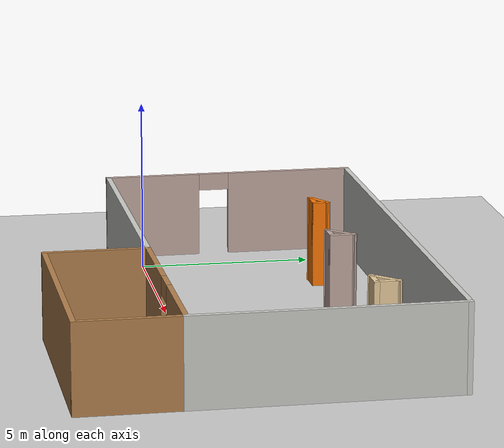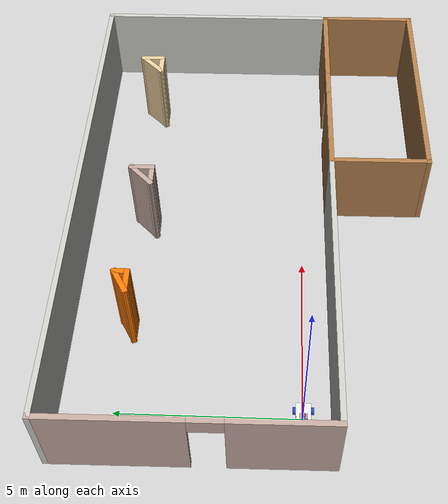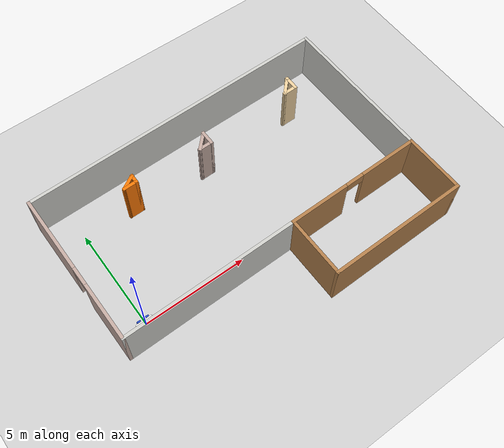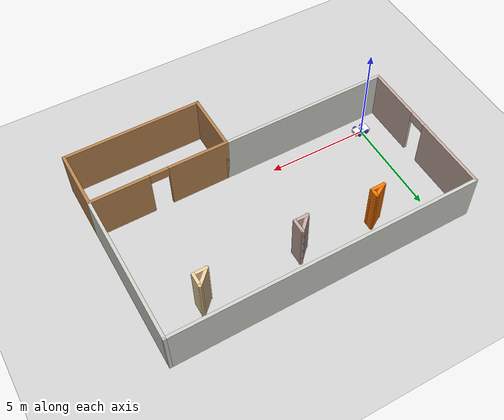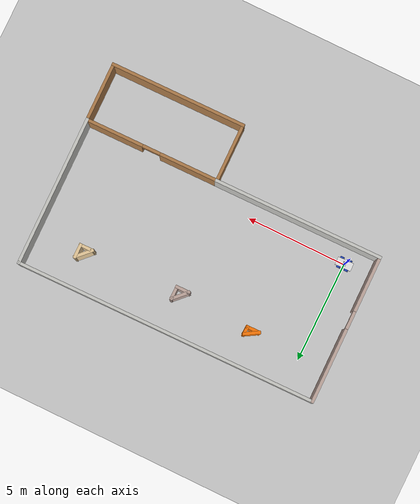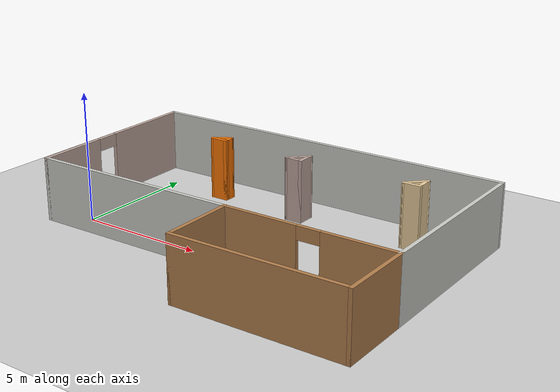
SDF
<sdf version="1.7">
 <world name="default">
  <light name="sun" type="directional">
   <pose>0 0 10 0 -0 0</pose>
   <diffuse>0.8 0.8 0.8 1</diffuse>
   <specular>0.2 0.2 0.2 1</specular>
   <attenuation>
    <range>1000</range>
    <constant>0.9</constant>
    <linear>0.01</linear>
    <quadratic>0.001</quadratic>
   </attenuation>
   <direction>-0.5 0.1 -0.9</direction>
   <spot><inner_angle>0</inner_angle><outer_angle>0</outer_angle><falloff>0</falloff></spot>
  </light>
  <model name="ground_plane">
   <static>1</static>
   <link name="link">
    <collision name="collision">
     <geometry><plane><normal>0 0 1</normal><size>100 100</size></plane></geometry>
     <surface><friction><ode><mu>100</mu><mu2>50</mu2></ode></friction></surface>
    </collision>
    <visual name="visual">
     <cast_shadows>0</cast_shadows>
     <geometry><plane><normal>0 0 1</normal><size>100 100</size></plane></geometry>
     <material>
      <script><uri>file://media/materials/scripts/gazebo.material</uri><name>Gazebo/Grey</name></script>
     </material>
    </visual>
   </link>
  </model>
  <gravity>0 0 -9.8</gravity>
  <magnetic_field>6e-06 2.3e-05 -4.2e-05</magnetic_field>
  <atmosphere type="adiabatic"/>
  <physics type="ode">
   <max_step_size>0.001</max_step_size>
   <real_time_factor>1</real_time_factor>
   <real_time_update_rate>1000</real_time_update_rate>
  </physics>
  <scene><ambient>0.4 0.4 0.4 1</ambient><background>0.7 0.7 0.7 1</background><shadows>1</shadows></scene>
  <audio><device>default</device></audio>
  <spherical_coordinates>
   <surface_model>EARTH_WGS84</surface_model>
   <latitude_deg>0</latitude_deg>
   <longitude_deg>0</longitude_deg>
   <elevation>0</elevation>
   <heading_deg>0</heading_deg>
  </spherical_coordinates>
  <model name="butler">
   <link name="base_link">
    <inertial>
     <pose>0 0 0.03625 0 -0 0</pose>
     <mass>0.8</mass>
     <inertia>
      <ixx>0.0105471</ixx>
      <ixy>0</ixy>
      <ixz>0</ixz>
      <iyy>0.0300471</iyy>
      <iyz>0</iyz>
      <izz>0.0342917</izz>
     </inertia>
    </inertial>
    <collision name="base_link_fixed_joint_lump__chassis_collision">
     <geometry><box><size>0.8 0.4 0.15</size></box></geometry>
    </collision>
    <collision name="base_link_fixed_joint_lump__laser_frame_collision_1">
     <pose>0 0 0.14 0 -0 0</pose>
     <geometry><cylinder><length>0.04</length><radius>0.05</radius></cylinder></geometry>
    </collision>
    <collision name="base_link_fixed_joint_lump__smaller_box_collision_2">
     <pose>0 0 0.075 0 -0 0</pose>
     <geometry><box><size>0.1 0.2 0.1</size></box></geometry>
    </collision>
    <visual name="base_link_fixed_joint_lump__chassis_visual">
     <geometry><box><size>0.8 0.4 0.15</size></box></geometry>
     <material>
      <script><name>Gazebo/White</name><uri>file://media/materials/scripts/gazebo.material</uri></script>
     </material>
    </visual>
    <visual name="base_link_fixed_joint_lump__camera_link_visual_1">
     <pose>0.4 0 0.08 0 -0 0</pose>
     <geometry><box><size>0.01 0.03 0.03</size></box></geometry>
     <material>
      <script><name>Gazebo/Red</name><uri>file://media/materials/scripts/gazebo.material</uri></script>
     </material>
    </visual>
    <visual name="base_link_fixed_joint_lump__laser_frame_visual_2">
     <pose>0 0 0.14 0 -0 0</pose>
     <geometry><cylinder><length>0.04</length><radius>0.05</radius></cylinder></geometry>
     <material>
      <script><name>Gazebo/Red</name><uri>file://media/materials/scripts/gazebo.material</uri></script>
     </material>
    </visual>
    <visual name="base_link_fixed_joint_lump__smaller_box_visual_3">
     <pose>0 0 0.075 0 -0 0</pose>
     <geometry><box><size>0.15 0.2 0.1</size></box></geometry>
     <material>
      <script><name>Gazebo/Gray</name><uri>file://media/materials/scripts/gazebo.material</uri></script>
     </material>
    </visual>
    <sensor name="camera" type="camera">
     <visualize>1</visualize>
     <update_rate>10</update_rate>
     <camera>
      <horizontal_fov>1.089</horizontal_fov>
      <image><format>R8G8B8</format><width>640</width><height>480</height></image>
      <clip><near>0.05</near><far>8</far></clip>
     </camera>
     <plugin name="camera_controller" filename="libgazebo_ros_camera.so">
      <frame_name>camera_link_optical</frame_name>
     </plugin>
     <pose>0.4 0 0.08 0 -0 0</pose>
    </sensor>
    <sensor name="laser" type="ray">
     <visualize>1</visualize>
     <update_rate>10</update_rate>
     <ray>
      <scan>
       <horizontal>
        <samples>360</samples>
        <min_angle>-3.14</min_angle>
        <max_angle>3.14</max_angle>
        <resolution>1</resolution>
       </horizontal>
       <vertical><samples>1</samples><min_angle>0</min_angle><max_angle>0</max_angle></vertical>
      </scan>
      <range><min>0.3</min><max>12</max></range>
     </ray>
     <plugin name="laser_controller" filename="libgazebo_ros_ray_sensor.so">
      <ros><argument>~/out:=scan</argument></ros>
      <output_type>sensor_msgs/LaserScan</output_type>
      <frame_name>laser_frame</frame_name>
     </plugin>
     <pose>0 0 0.14 0 -0 0</pose>
    </sensor>
   </link>
   <joint name="front_left_wheel_joint" type="revolute">
    <pose relative_to="base_link">0.2 0.24 0 -1.5714 0 0</pose>
    <parent>base_link</parent>
    <child>front_left_wheel</child>
    <axis>
     <xyz>0 0 1</xyz>
     <limit><lower>-1e+16</lower><upper>1e+16</upper></limit>
     <dynamics><spring_reference>0</spring_reference><spring_stiffness>0</spring_stiffness></dynamics>
    </axis>
   </joint>
   <link name="front_left_wheel">
    <pose relative_to="front_left_wheel_joint">0 0 0 0 -0 0</pose>
    <inertial>
     <mass>0.1</mass>
     <inertia>
      <ixx>0.000303333</ixx>
      <ixy>0</ixy>
      <ixz>0</ixz>
      <iyy>0.000303333</iyy>
      <iyz>0</iyz>
      <izz>0.0005</izz>
     </inertia>
    </inertial>
    <collision name="front_left_wheel_collision">
     <geometry><cylinder><length>0.08</length><radius>0.1</radius></cylinder></geometry>
    </collision>
    <visual name="front_left_wheel_visual">
     <geometry><cylinder><length>0.08</length><radius>0.1</radius></cylinder></geometry>
     <material>
      <script><name>Gazebo/Blue</name><uri>file://media/materials/scripts/gazebo.material</uri></script>
     </material>
    </visual>
   </link>
   <joint name="front_right_wheel_joint" type="revolute">
    <pose relative_to="base_link">0.2 -0.24 0 1.5714 -0 0</pose>
    <parent>base_link</parent>
    <child>front_right_wheel</child>
    <axis>
     <xyz>0 0 -1</xyz>
     <limit><lower>-1e+16</lower><upper>1e+16</upper></limit>
     <dynamics><spring_reference>0</spring_reference><spring_stiffness>0</spring_stiffness></dynamics>
    </axis>
   </joint>
   <link name="front_right_wheel">
    <pose relative_to="front_right_wheel_joint">0 0 0 0 -0 0</pose>
    <inertial>
     <mass>0.1</mass>
     <inertia>
      <ixx>0.000303333</ixx>
      <ixy>0</ixy>
      <ixz>0</ixz>
      <iyy>0.000303333</iyy>
      <iyz>0</iyz>
      <izz>0.0005</izz>
     </inertia>
    </inertial>
    <collision name="front_right_wheel_collision">
     <geometry><cylinder><length>0.08</length><radius>0.1</radius></cylinder></geometry>
    </collision>
    <visual name="front_right_wheel_visual">
     <geometry><cylinder><length>0.08</length><radius>0.1</radius></cylinder></geometry>
     <material>
      <script><name>Gazebo/Blue</name><uri>file://media/materials/scripts/gazebo.material</uri></script>
     </material>
    </visual>
   </link>
   <joint name="rear_left_wheel_joint" type="revolute">
    <pose relative_to="base_link">-0.2 0.24 0 -1.5714 0 0</pose>
    <parent>base_link</parent>
    <child>rear_left_wheel</child>
    <axis>
     <xyz>0 0 1</xyz>
     <limit><lower>-1e+16</lower><upper>1e+16</upper></limit>
     <dynamics><spring_reference>0</spring_reference><spring_stiffness>0</spring_stiffness></dynamics>
    </axis>
   </joint>
   <link name="rear_left_wheel">
    <pose relative_to="rear_left_wheel_joint">0 0 0 0 -0 0</pose>
    <inertial>
     <mass>0.1</mass>
     <inertia>
      <ixx>0.000303333</ixx>
      <ixy>0</ixy>
      <ixz>0</ixz>
      <iyy>0.000303333</iyy>
      <iyz>0</iyz>
      <izz>0.0005</izz>
     </inertia>
    </inertial>
    <collision name="rear_left_wheel_collision">
     <geometry><cylinder><length>0.08</length><radius>0.1</radius></cylinder></geometry>
    </collision>
    <visual name="rear_left_wheel_visual">
     <geometry><cylinder><length>0.08</length><radius>0.1</radius></cylinder></geometry>
     <material>
      <script><name>Gazebo/Blue</name><uri>file://media/materials/scripts/gazebo.material</uri></script>
     </material>
    </visual>
   </link>
   <joint name="rear_right_wheel_joint" type="revolute">
    <pose relative_to="base_link">-0.2 -0.24 0 1.5714 -0 0</pose>
    <parent>base_link</parent>
    <child>rear_right_wheel</child>
    <axis>
     <xyz>0 0 -1</xyz>
     <limit><lower>-1e+16</lower><upper>1e+16</upper></limit>
     <dynamics><spring_reference>0</spring_reference><spring_stiffness>0</spring_stiffness></dynamics>
    </axis>
   </joint>
   <link name="rear_right_wheel">
    <pose relative_to="rear_right_wheel_joint">0 0 0 0 -0 0</pose>
    <inertial>
     <mass>0.1</mass>
     <inertia>
      <ixx>0.000303333</ixx>
      <ixy>0</ixy>
      <ixz>0</ixz>
      <iyy>0.000303333</iyy>
      <iyz>0</iyz>
      <izz>0.0005</izz>
     </inertia>
    </inertial>
    <collision name="rear_right_wheel_collision">
     <geometry><cylinder><length>0.08</length><radius>0.1</radius></cylinder></geometry>
    </collision>
    <visual name="rear_right_wheel_visual">
     <geometry><cylinder><length>0.08</length><radius>0.1</radius></cylinder></geometry>
     <material>
      <script><name>Gazebo/Blue</name><uri>file://media/materials/scripts/gazebo.material</uri></script>
     </material>
    </visual>
   </link>
   <static>0</static>
   <plugin name="skid_steer_drive" filename="libgazebo_ros_diff_drive.so">
    <update_rate>500</update_rate>
    <num_wheel_pairs>2</num_wheel_pairs>
    <left_joint>front_left_wheel_joint</left_joint>
    <right_joint>front_right_wheel_joint</right_joint>
    <left_joint>rear_left_wheel_joint</left_joint>
    <right_joint>rear_right_wheel_joint</right_joint>
    <wheel_separation>0.48</wheel_separation>
    <wheel_separation>0.48</wheel_separation>
    <wheel_diameter>0.2</wheel_diameter>
    <wheel_diameter>0.2</wheel_diameter>
    <max_wheel_torque>200</max_wheel_torque>
    <max_wheel_acceleration>10.0</max_wheel_acceleration>
    <publish_odom>1</publish_odom>
    <publish_odom_tf>1</publish_odom_tf>
    <publish_wheel_tf>1</publish_wheel_tf>
    <odometry_frame>odom</odometry_frame>
    <robot_base_frame>base_link</robot_base_frame>
   </plugin>
   <pose>0.000904 -0.028292 0.10002 -1.8e-05 1e-06 0.013725</pose>
  </model>
  <model name="hotel">
   <pose>6.19415 1.4762 0 0 0 -3.13103</pose>
   <link name="Wall_0">
    <collision name="Wall_0_Collision">
     <geometry><box><size>8.5 0.15 2.5</size></box></geometry>
     <pose>0 0 1.25 0 -0 0</pose>
    </collision>
    <visual name="Wall_0_Visual">
     <pose>0 0 1.25 0 -0 0</pose>
     <geometry><box><size>8.5 0.15 2.5</size></box></geometry>
     <material>
      <script><uri>file://media/materials/scripts/gazebo.material</uri><name>Gazebo/CeilingTiled</name></script>
      <ambient>0.435294 0.796078 0.67451 1</ambient>
     </material>
     <meta><layer>0</layer></meta>
    </visual>
    <pose>3.32848 2.25 0 0 -0 0</pose>
   </link>
   <link name="Wall_1">
    <pose>7.50348 -1.425 0 0 -0 -1.5708</pose>
    <visual name="Wall_1_Visual_0">
     <pose>-2.33233 0 1.25 0 -0 0</pose>
     <geometry><box><size>2.83534 0.15 2.5</size></box></geometry>
     <material>
      <script><uri>file://media/materials/scripts/gazebo.material</uri><name>Gazebo/Grey</name></script>
      <ambient>0.760784 0.662745 0.627451 1</ambient>
     </material>
     <meta><layer>0</layer></meta>
    </visual>
    <collision name="Wall_1_Collision_0">
     <geometry><box><size>2.83534 0.15 2.5</size></box></geometry>
     <pose>-2.33233 0 1.25 0 -0 0</pose>
    </collision>
    <visual name="Wall_1_Visual_1">
     <pose>1.86767 0 1.25 0 -0 0</pose>
     <geometry><box><size>3.76465 0.15 2.5</size></box></geometry>
     <material>
      <script><uri>file://media/materials/scripts/gazebo.material</uri><name>Gazebo/Grey</name></script>
      <ambient>0.760784 0.662745 0.627451 1</ambient>
     </material>
     <meta><layer>0</layer></meta>
    </visual>
    <collision name="Wall_1_Collision_1">
     <geometry><box><size>3.76465 0.15 2.5</size></box></geometry>
     <pose>1.86767 0 1.25 0 -0 0</pose>
    </collision>
    <visual name="Wall_1_Visual_2">
     <pose>-0.464655 0 2.25 0 -0 0</pose>
     <geometry><box><size>0.9 0.15 0.5</size></box></geometry>
     <material>
      <script><uri>file://media/materials/scripts/gazebo.material</uri><name>Gazebo/Grey</name></script>
      <ambient>0.760784 0.662745 0.627451 1</ambient>
     </material>
     <meta><layer>0</layer></meta>
    </visual>
    <collision name="Wall_1_Collision_2">
     <geometry><box><size>0.9 0.15 0.5</size></box></geometry>
     <pose>-0.464655 0 2.25 0 -0 0</pose>
    </collision>
   </link>
   <link name="Wall_10">
    <collision name="Wall_10_Collision">
     <geometry><box><size>3 0.15 2.5</size></box></geometry>
     <pose>0 0 1.25 0 -0 0</pose>
    </collision>
    <visual name="Wall_10_Visual">
     <pose>0 0 1.25 0 -0 0</pose>
     <geometry><box><size>3 0.15 2.5</size></box></geometry>
     <material>
      <script><uri>file://media/materials/scripts/gazebo.material</uri><name>Gazebo/Wood</name></script>
      <ambient>1 1 1 1</ambient>
     </material>
     <meta><layer>0</layer></meta>
    </visual>
    <pose>-7.50348 3.675 0 0 -0 1.5708</pose>
   </link>
   <link name="Wall_11">
    <collision name="Wall_11_Collision">
     <geometry><box><size>6.80695 0.15 2.5</size></box></geometry>
     <pose>0 0 1.25 0 -0 0</pose>
    </collision>
    <visual name="Wall_11_Visual">
     <pose>0 0 1.25 0 -0 0</pose>
     <geometry><box><size>6.80695 0.15 2.5</size></box></geometry>
     <material>
      <script><uri>file://media/materials/scripts/gazebo.material</uri><name>Gazebo/Wood</name></script>
      <ambient>1 1 1 1</ambient>
     </material>
     <meta><layer>0</layer></meta>
    </visual>
    <pose>-4.175 5.1 0 0 -0 0</pose>
   </link>
   <link name="Wall_13">
    <collision name="Wall_13_Collision">
     <geometry><box><size>0.75 0.15 2.5</size></box></geometry>
     <pose>0 0 1.25 0 -0 0</pose>
    </collision>
    <visual name="Wall_13_Visual">
     <pose>0 0 1.25 0 -0 0</pose>
     <geometry><box><size>0.75 0.15 2.5</size></box></geometry>
     <material>
      <script><uri>file://media/materials/scripts/gazebo.material</uri><name>Gazebo/Grey</name></script>
      <ambient>0.921569 0.807843 0.615686 1</ambient>
     </material>
     <meta><layer>0</layer></meta>
    </visual>
    <pose>-5.27421 -3.44406 0 0 -0 1.5708</pose>
   </link>
   <link name="Wall_14">
    <collision name="Wall_14_Collision">
     <geometry><box><size>0.75 0.15 2.5</size></box></geometry>
     <pose>0 0 1.25 0 -0 0</pose>
    </collision>
    <visual name="Wall_14_Visual">
     <pose>0 0 1.25 0 -0 0</pose>
     <geometry><box><size>0.75 0.15 2.5</size></box></geometry>
     <material>
      <script><uri>file://media/materials/scripts/gazebo.material</uri><name>Gazebo/Grey</name></script>
      <ambient>0.921569 0.807843 0.615686 1</ambient>
     </material>
     <meta><layer>0</layer></meta>
    </visual>
    <pose>-4.97421 -3.14405 0 0 -0 0</pose>
   </link>
   <link name="Wall_15">
    <collision name="Wall_15_Collision">
     <geometry><box><size>0.998528 0.15 2.5</size></box></geometry>
     <pose>0 0 1.25 0 -0 0</pose>
    </collision>
    <visual name="Wall_15_Visual">
     <pose>0 0 1.25 0 -0 0</pose>
     <geometry><box><size>0.998528 0.15 2.5</size></box></geometry>
     <material>
      <script><uri>file://media/materials/scripts/gazebo.material</uri><name>Gazebo/Grey</name></script>
      <ambient>0.921569 0.807843 0.615686 1</ambient>
     </material>
     <meta><layer>0</layer></meta>
    </visual>
    <pose>-4.97421 -3.44406 0 0 -0 -2.35619</pose>
   </link>
   <link name="Wall_17">
    <collision name="Wall_17_Collision">
     <geometry><box><size>0.75 0.15 2.5</size></box></geometry>
     <pose>0 0 1.25 0 -0 0</pose>
    </collision>
    <visual name="Wall_17_Visual">
     <pose>0 0 1.25 0 -0 0</pose>
     <geometry><box><size>0.75 0.15 2.5</size></box></geometry>
     <material>
      <script><uri>file://media/materials/scripts/gazebo.material</uri><name>Gazebo/Grey</name></script>
      <ambient>0.760784 0.662745 0.627451 1</ambient>
     </material>
     <meta><layer>0</layer></meta>
    </visual>
    <pose>-0.410359 -3.2911 0 0 -0 1.5708</pose>
   </link>
   <link name="Wall_18">
    <collision name="Wall_18_Collision">
     <geometry><box><size>0.75 0.15 2.5</size></box></geometry>
     <pose>0 0 1.25 0 -0 0</pose>
    </collision>
    <visual name="Wall_18_Visual">
     <pose>0 0 1.25 0 -0 0</pose>
     <geometry><box><size>0.75 0.15 2.5</size></box></geometry>
     <material>
      <script><uri>file://media/materials/scripts/gazebo.material</uri><name>Gazebo/Grey</name></script>
      <ambient>0.760784 0.662745 0.627451 1</ambient>
     </material>
     <meta><layer>0</layer></meta>
    </visual>
    <pose>-0.110359 -2.9911 0 0 -0 0</pose>
   </link>
   <link name="Wall_19">
    <collision name="Wall_19_Collision">
     <geometry><box><size>0.998528 0.15 2.5</size></box></geometry>
     <pose>0 0 1.25 0 -0 0</pose>
    </collision>
    <visual name="Wall_19_Visual">
     <pose>0 0 1.25 0 -0 0</pose>
     <geometry><box><size>0.998528 0.15 2.5</size></box></geometry>
     <material>
      <script><uri>file://media/materials/scripts/gazebo.material</uri><name>Gazebo/Grey</name></script>
      <ambient>0.760784 0.662745 0.627451 1</ambient>
     </material>
     <meta><layer>0</layer></meta>
    </visual>
    <pose>-0.110359 -3.2911 0 0 -0 -2.35619</pose>
   </link>
   <link name="Wall_2">
    <collision name="Wall_2_Collision">
     <geometry><box><size>15.157 0.15 2.5</size></box></geometry>
     <pose>0 0 1.25 0 -0 0</pose>
    </collision>
    <visual name="Wall_2_Visual">
     <pose>0 0 1.25 0 -0 0</pose>
     <geometry><box><size>15.157 0.15 2.5</size></box></geometry>
     <material>
      <script><uri>file://media/materials/scripts/gazebo.material</uri><name>Gazebo/CeilingTiled</name></script>
      <ambient>0.435294 0.796078 0.67451 1</ambient>
     </material>
     <meta><layer>0</layer></meta>
    </visual>
    <pose>0 -5.1 0 0 -0 3.14159</pose>
   </link>
   <link name="Wall_22">
    <collision name="Wall_22_Collision">
     <geometry><box><size>0.5 0.15 2.5</size></box></geometry>
     <pose>0 0 1.25 0 -0 0</pose>
    </collision>
    <visual name="Wall_22_Visual">
     <pose>0 0 1.25 0 -0 0</pose>
     <geometry><box><size>0.5 0.15 2.5</size></box></geometry>
     <material>
      <script><uri>file://media/materials/scripts/gazebo.material</uri><name>Gazebo/Grey</name></script>
      <ambient>0.996078 0.47451 0.0196078 1</ambient>
     </material>
     <meta><layer>0</layer></meta>
    </visual>
    <pose>3.32165 -3.44669 0 0 -0 1.5708</pose>
   </link>
   <link name="Wall_23">
    <collision name="Wall_23_Collision">
     <geometry><box><size>0.75 0.15 2.5</size></box></geometry>
     <pose>0 0 1.25 0 -0 0</pose>
    </collision>
    <visual name="Wall_23_Visual">
     <pose>0 0 1.25 0 -0 0</pose>
     <geometry><box><size>0.75 0.15 2.5</size></box></geometry>
     <material>
      <script><uri>file://media/materials/scripts/gazebo.material</uri><name>Gazebo/Grey</name></script>
      <ambient>0.996078 0.47451 0.0196078 1</ambient>
     </material>
     <meta><layer>0</layer></meta>
    </visual>
    <pose>3.62165 -3.27169 0 0 -0 0</pose>
   </link>
   <link name="Wall_24">
    <collision name="Wall_24_Collision">
     <geometry><box><size>0.844622 0.15 2.5</size></box></geometry>
     <pose>0 0 1.25 0 -0 0</pose>
    </collision>
    <visual name="Wall_24_Visual">
     <pose>0 0 1.25 0 -0 0</pose>
     <geometry><box><size>0.844622 0.15 2.5</size></box></geometry>
     <material>
      <script><uri>file://media/materials/scripts/gazebo.material</uri><name>Gazebo/Grey</name></script>
      <ambient>0.996078 0.47451 0.0196078 1</ambient>
     </material>
     <meta><layer>0</layer></meta>
    </visual>
    <pose>3.62165 -3.44669 0 0 -0 -2.61352</pose>
   </link>
   <link name="Wall_5">
    <collision name="Wall_5_Collision">
     <geometry><box><size>7.5 0.15 2.5</size></box></geometry>
     <pose>0 0 1.25 0 -0 0</pose>
    </collision>
    <visual name="Wall_5_Visual">
     <pose>0 0 1.25 0 -0 0</pose>
     <geometry><box><size>7.5 0.15 2.5</size></box></geometry>
     <material>
      <script><uri>file://media/materials/scripts/gazebo.material</uri><name>Gazebo/CeilingTiled</name></script>
      <ambient>0.435294 0.796078 0.67451 1</ambient>
     </material>
     <meta><layer>0</layer></meta>
    </visual>
    <pose>-7.50348 -1.425 0 0 -0 1.5708</pose>
   </link>
   <link name="Wall_6">
    <pose>-4.175 2.25 0 0 -0 0</pose>
    <visual name="Wall_6_Visual_0">
     <pose>-1.94101 0 1.25 0 -0 0</pose>
     <geometry><box><size>2.92493 0.15 2.5</size></box></geometry>
     <material>
      <script><uri>file://media/materials/scripts/gazebo.material</uri><name>Gazebo/Wood</name></script>
      <ambient>1 1 1 1</ambient>
     </material>
     <meta><layer>0</layer></meta>
    </visual>
    <collision name="Wall_6_Collision_0">
     <geometry><box><size>2.92493 0.15 2.5</size></box></geometry>
     <pose>-1.94101 0 1.25 0 -0 0</pose>
    </collision>
    <visual name="Wall_6_Visual_1">
     <pose>1.91246 0 1.25 0 -0 0</pose>
     <geometry><box><size>2.98202 0.15 2.5</size></box></geometry>
     <material>
      <script><uri>file://media/materials/scripts/gazebo.material</uri><name>Gazebo/Wood</name></script>
      <ambient>1 1 1 1</ambient>
     </material>
     <meta><layer>0</layer></meta>
    </visual>
    <collision name="Wall_6_Collision_1">
     <geometry><box><size>2.98202 0.15 2.5</size></box></geometry>
     <pose>1.91246 0 1.25 0 -0 0</pose>
    </collision>
    <visual name="Wall_6_Visual_2">
     <pose>-0.028547 0 2.25 0 -0 0</pose>
     <geometry><box><size>0.9 0.15 0.5</size></box></geometry>
     <material>
      <script><uri>file://media/materials/scripts/gazebo.material</uri><name>Gazebo/Wood</name></script>
      <ambient>1 1 1 1</ambient>
     </material>
     <meta><layer>0</layer></meta>
    </visual>
    <collision name="Wall_6_Collision_2">
     <geometry><box><size>0.9 0.15 0.5</size></box></geometry>
     <pose>-0.028547 0 2.25 0 -0 0</pose>
    </collision>
   </link>
   <link name="Wall_7">
    <collision name="Wall_7_Collision">
     <geometry><box><size>3 0.15 2.5</size></box></geometry>
     <pose>0 0 1.25 0 -0 0</pose>
    </collision>
    <visual name="Wall_7_Visual">
     <pose>0 0 1.25 0 -0 0</pose>
     <geometry><box><size>3 0.15 2.5</size></box></geometry>
     <material>
      <script><uri>file://media/materials/scripts/gazebo.material</uri><name>Gazebo/Wood</name></script>
      <ambient>1 1 1 1</ambient>
     </material>
     <meta><layer>0</layer></meta>
    </visual>
    <pose>-0.846524 3.675 0 0 -0 1.5708</pose>
   </link>
   <static>1</static>
  </model>
 </world>
</sdf>
